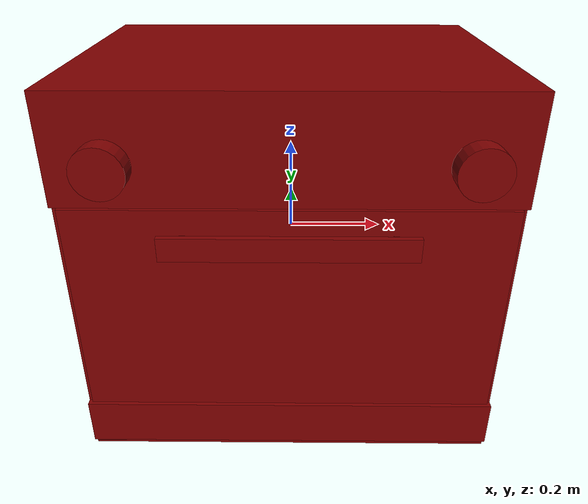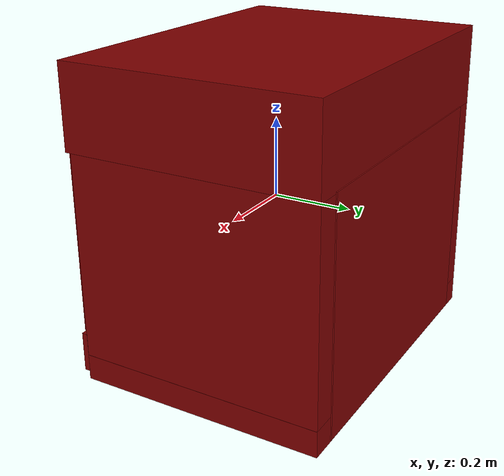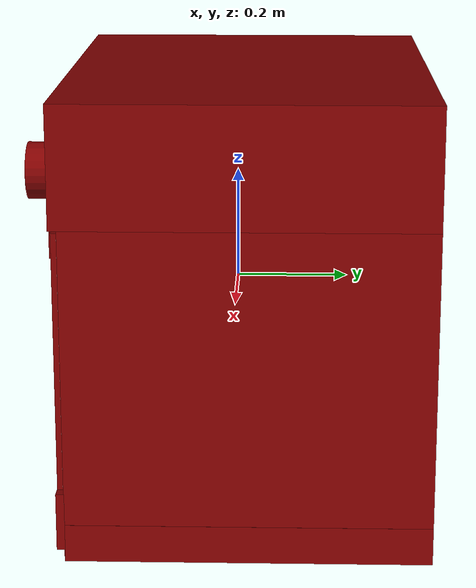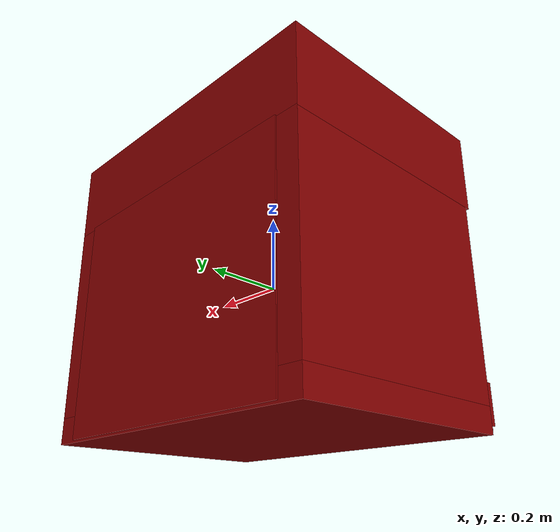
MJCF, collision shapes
<mujoco model="model">
  <compiler angle="radian"/>
  <asset>
    <mesh file="visuals/Body001.obj" name="Body001_vis"/>
    <mesh file="visuals/Door001.obj" name="Door001_vis"/>
    <mesh file="visuals/Door001_Clear.obj" name="Door001_Clear_vis"/>
    <mesh file="visuals/Knob001.obj" name="Knob001_vis"/>
    <mesh file="visuals/Knob002.obj" name="Knob002_vis"/>
    <mesh file="visuals/Shelf001.obj" name="Shelf001_vis"/>
    <texture file="visuals/T_BC001.png" name="Body001_material" type="2d"/>
    <material name="Body001_material" rgba="1 1 1 1.0" texture="Body001_material" shininess="0.4472135901451111" specular="1"/>
    <texture file="visuals/T_BC001.png" name="Door001_material" type="2d"/>
    <material name="Door001_material" rgba="1 1 1 1.0" texture="Door001_material" shininess="0.4472135901451111" specular="1"/>
    <texture file="visuals/T_BC001.png" name="Door001_Clear_material" type="2d"/>
    <material name="Door001_Clear_material" rgba="1 1 1 1.0" texture="Door001_Clear_material" shininess="0.4472135901451111" specular="0.81"/>
    <texture file="visuals/T_BC001.png" name="Knob001_material" type="2d"/>
    <material name="Knob001_material" rgba="1 1 1 1.0" texture="Knob001_material" shininess="0.4472135901451111" specular="0.3103448502657381"/>
    <texture file="visuals/T_BC001.png" name="Knob002_material" type="2d"/>
    <material name="Knob002_material" rgba="1 1 1 1.0" texture="Knob002_material" shininess="0.4472135901451111" specular="0.3103448502657381"/>
    <texture file="visuals/T_BC001.png" name="Shelf001_material" type="2d"/>
    <material name="Shelf001_material" rgba="1 1 1 1.0" texture="Shelf001_material" shininess="0.4472135901451111" specular="0.3103448502657381"/>
  </asset>
  <default>
    <default class="visual">
      <geom conaffinity="0" contype="0" group="1" type="mesh"/>
    </default>
    <default class="collision">
      <geom group="0" rgba="0.5 0 0 0.5"/>
    </default>
    <default class="spawn">
      <geom group="0" rgba="1 1 1 0.5" contype="0" conaffinity="0"/>
      <site group="0" rgba="1 1 1 0.5"/>
    </default>
    <default class="region">
      <geom group="1" conaffinity="0" contype="0" rgba="0 1 0 0"/>
    </default>
  </default>
  <worldbody>
    <body>
      <body name="object">
        <geom mesh="Body001_vis" type="mesh" solimp="0.998 0.998 0.001" solref="0.001 1" density="100" friction="0.95 0.3 0.1" class="visual" material="Body001_material"/>
        <geom class="collision" type="box" pos="-0.000499 0.021222 0.286310" size="0.41879627108573914 0.3180840015411377 0.10353661328554153" quat="1.0 0.0 0.0 0.0"/>
        <geom class="collision" type="box" pos="-0.387160 0.028014 -0.100199" size="0.03213461861014366 0.3112923204898834 0.2864428162574768" quat="1.0 0.0 0.0 0.0"/>
        <geom class="collision" type="box" pos="0.385963 0.028296 -0.101184" size="0.03213461861014366 0.3110102713108063 0.28545698523521423" quat="1.0 0.0 0.0 0.0"/>
        <geom class="collision" type="box" pos="-0.002117 0.241164 -0.098933" size="0.3579273521900177 0.10123945772647858 0.2877080738544464" quat="1.0 0.0 0.0 0.0"/>
        <geom class="collision" type="box" pos="-0.000499 -0.288867 -0.321801" size="0.41879627108573914 0.006977546494454145 0.04997134208679199" quat="1.0 0.0 0.0 0.0"/>
        <geom class="collision" type="box" pos="-0.000499 0.028514 -0.359994" size="0.41879627108573914 0.310792475938797 0.03265897184610367" quat="1.0 0.0 0.0 0.0"/>
        <geom class="collision" type="box" pos="-0.346096 -0.061604 0.031114" size="0.016483696177601814 0.1967303305864334 0.008244330063462257" quat="6.715443419125222e-07 0.0 0.0 1.0"/>
        <geom class="collision" type="box" pos="0.347018 -0.061604 -0.039451" size="0.016483673825860023 0.1967303305864334 0.01336018368601799" quat="6.715443419125222e-07 0.0 0.0 1.0"/>
        <geom class="collision" type="box" pos="-0.346096 -0.061604 -0.068703" size="0.016483696177601814 0.1967303305864334 0.005152175202965736" quat="6.715443419125222e-07 0.0 0.0 1.0"/>
        <geom class="collision" type="box" pos="0.347018 -0.061604 -0.165574" size="0.016483673825860023 0.1967303305864334 0.013375923968851566" quat="6.715443419125222e-07 0.0 0.0 1.0"/>
        <geom class="collision" type="box" pos="0.347018 -0.061604 0.031114" size="0.016483673825860023 0.1967303305864334 0.008244330063462257" quat="6.715443419125222e-07 0.0 0.0 1.0"/>
        <geom class="collision" type="box" pos="-0.346096 -0.061604 -0.039451" size="0.016483696177601814 0.1967303305864334 0.01336018368601799" quat="6.715443419125222e-07 0.0 0.0 1.0"/>
        <geom class="collision" type="box" pos="0.347018 -0.061604 -0.068703" size="0.016483673825860023 0.1967303305864334 0.005152175202965736" quat="6.715443419125222e-07 0.0 0.0 1.0"/>
        <geom class="collision" type="box" pos="-0.346096 -0.061604 -0.165574" size="0.016483696177601814 0.1967303305864334 0.013375923968851566" quat="6.715443419125222e-07 0.0 0.0 1.0"/>
        <geom class="collision" type="box" pos="0.347018 -0.061604 -0.230349" size="0.016483673825860023 0.1967303305864334 0.005326995626091957" quat="6.715443419125222e-07 0.0 0.0 1.0"/>
        <geom class="collision" type="box" pos="-0.346096 -0.061604 -0.230352" size="0.016483696177601814 0.1967303305864334 0.005323205143213272" quat="6.715443419125222e-07 0.0 0.0 1.0"/>
        <geom class="collision" type="box" pos="-0.001782 0.021946 0.160696" size="0.35844725370407104 0.3046603798866272 0.023319164291024208" quat="1.0 0.0 0.0 0.0"/>
        <body name="Door001">
          <joint axis="1.0 0.0 0.0" pos="-0.000053 -0.292316 -0.267313" limited="true" name="Door001_joint" range="0.0 1.15" type="hinge" damping="5" frictionloss="1" armature=".01" stiffness="0.05"/>
          <geom mesh="Door001_vis" type="mesh" solimp="0.998 0.998 0.001" solref="0.001 1" density="100" friction="0.95 0.3 0.1" class="visual" material="Door001_material"/>
          <geom class="collision" type="box" pos="-0.000237 -0.288734 -0.044739" size="0.40955543518066406 0.004729602485895157 0.222121000289917" quat="1.0 0.0 0.0 0.0"/>
          <geom class="collision" type="box" pos="-0.191272 -0.300982 0.112037" size="0.0051465448923408985 0.008215632289648056 0.015897713601589203" quat="1.0 0.0 0.0 0.0"/>
          <geom class="collision" type="box" pos="-0.000326 -0.314386 0.111816" size="0.23404867947101593 0.005843660328537226 0.023289494216442108" quat="1.0 0.0 0.0 0.0"/>
          <geom class="collision" type="box" pos="0.190487 -0.300982 0.112037" size="0.0051465448923408985 0.008215632289648056 0.015897713601589203" quat="1.0 0.0 0.0 0.0"/>
          <body name="Door001_Clear">
            <geom mesh="Door001_Clear_vis" type="mesh" solimp="0.998 0.998 0.001" solref="0.001 1" density="100" friction="0.95 0.3 0.1" class="visual" material="Door001_Clear_material"/>
            <geom class="collision" type="box" pos="-0.000909 -0.287184 -0.090397" size="0.28492963314056396 0.00500263087451458 0.14061003923416138" quat="1.0 0.0 0.0 0.0"/>
          </body>
        </body>
        <body name="Knob001">
          <joint axis="0.0 1.0 0.0" pos="-0.312105 -0.314547 0.261811" limited="true" name="Knob001_joint" range="0.0 4.031710572106902" type="hinge" damping="0.05" armature="0.001"/>
          <geom mesh="Knob001_vis" type="mesh" solimp="0.998 0.998 0.001" solref="0.001 1" density="100" friction="0.95 0.3 0.1" class="visual" material="Knob001_material"/>
          <geom class="collision" type="cylinder" pos="-0.312105 -0.317712 0.261811" size="0.04734976962208748 0.019981633871793747" quat="0.7071067094802856 0.70710688829422 0.0 0.0"/>
        </body>
        <body name="Knob002">
          <joint axis="0.0 1.0 0.0" pos="0.318871 -0.314547 0.262260" limited="true" name="Knob002_joint" range="0.0 3.193952531149623" type="hinge" damping="0.05" armature="0.001"/>
          <geom mesh="Knob002_vis" type="mesh" solimp="0.998 0.998 0.001" solref="0.001 1" density="100" friction="0.95 0.3 0.1" class="visual" material="Knob002_material"/>
          <geom class="collision" type="cylinder" pos="0.318645 -0.317712 0.262684" size="0.04734976962208748 0.019981633871793747" quat="0.7071067094802856 0.70710688829422 0.0 0.0"/>
        </body>
        <body name="Shelf001">
          <joint axis="0.0 -1.0 0.0" pos="0.003806 -0.054185 -0.057485" limited="true" name="Shelf001_joint" range="0.0 0.35" type="slide" damping="1" frictionloss="1" armature=".01" stiffness="0.05"/>
          <geom mesh="Shelf001_vis" type="mesh" solimp="0.998 0.998 0.001" solref="0.001 1" density="100" friction="0.95 0.3 0.1" class="visual" material="Shelf001_material"/>
          <geom class="collision" type="box" pos="0.000519 -0.054823 -0.058121" size="0.32854729890823364 0.19289615750312805 0.007079288829118013" quat="1.0 0.0 0.0 0.0"/>
        </body>
        <geom class="region" name="reg_main" type="box" pos="0.0 0.021092 7.999999999980245e-06" size="0.415101 0.315911 0.38785000000000003"/>
        <geom class="region" name="reg_int" type="box" pos="-0.017009999999999997 -0.06379499999999999 -0.091342" size="0.343847 0.207667 0.219307"/>
      </body>
    </body>
  </worldbody>
  <actuator>
    <motor name="Door001_joint_actuator" joint="Door001_joint" gear="40"/>
    <motor name="Knob001_joint_actuator" joint="Knob001_joint" gear="5"/>
    <motor name="Knob002_joint_actuator" joint="Knob002_joint" gear="5"/>
    <motor name="Shelf001_joint_actuator" joint="Shelf001_joint" gear="50"/>
  </actuator>
</mujoco>
